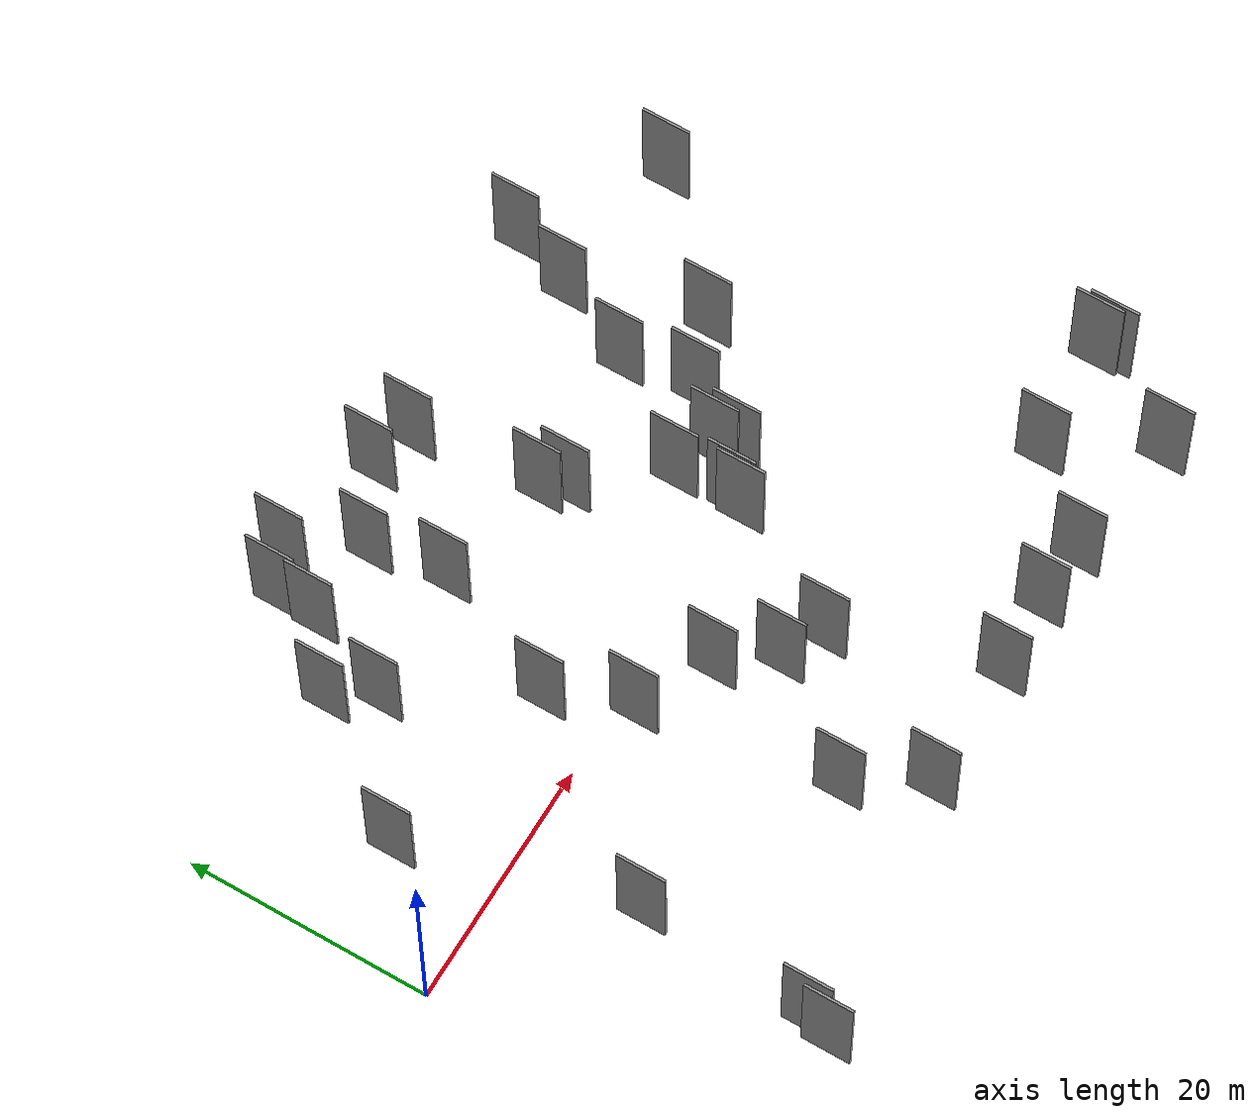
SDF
<sdf version="1.6">
 <world name="default">
  <scene>
   <sky><clouds><speed>12</speed></clouds></sky>
   <ambient>0.4 0.4 0.4 1</ambient>
   <background>0.7 0.7 0.7 1</background>
   <shadows>1</shadows>
  </scene>
  <gravity>0 0 -9.8066</gravity>
  <magnetic_field>6e-06 2.3e-05 -4.2e-05</magnetic_field>
  <physics default="0" name="default_physics" type="ode">
   <ode>
    <solver>
     <type>quick</type>
     <iters>10</iters>
     <sor>1.0</sor>
     <use_dynamic_moi_rescaling>0</use_dynamic_moi_rescaling>
    </solver>
    <constraints>
     <cfm>0</cfm>
     <erp>0.2</erp>
     <contact_max_correcting_vel>100</contact_max_correcting_vel>
     <contact_surface_layer>0.001</contact_surface_layer>
    </constraints>
   </ode>
   <max_step_size>0.004</max_step_size>
   <real_time_factor>1</real_time_factor>
   <real_time_update_rate>250</real_time_update_rate>
  </physics>
  <light name="sun" type="directional">
   <pose>0 0 10 0 0 0</pose>
   <diffuse>0.8 0.8 0.8 1</diffuse>
   <specular>0.2 0.2 0.2 1</specular>
   <attenuation>
    <range>1000</range>
    <constant>0.9</constant>
    <linear>0.01</linear>
    <quadratic>0.001</quadratic>
   </attenuation>
   <direction>-0.5 0.1 -0.9</direction>
  </light>
  <model name="grey_wall_1">
   <static>1</static>
   <pose>67.3422 -16.6134 2.5 0.000000 0.000000 1.570796</pose>
   <link name="link">
    <pose>0 0 5.00 0 0 0</pose>
    <collision name="collision"><geometry><box><size>4.00 0.2 10.00</size></box></geometry></collision>
    <visual name="visual">
     <cast_shadows>0</cast_shadows>
     <geometry><box><size>4.00 0.2 10.00</size></box></geometry>
     <material>
      <script>
       <uri>model://grey_wall/materials/scripts</uri>
       <uri>model://grey_wall/materials/textures</uri>
       <name>vrc/grey_wall</name>
      </script>
     </material>
    </visual>
   </link>
  </model>
  <model name="grey_wall_2">
   <static>1</static>
   <pose>37.7142 11.1128 2.5 0.000000 0.000000 1.570796</pose>
   <link name="link">
    <pose>0 0 5.00 0 0 0</pose>
    <collision name="collision"><geometry><box><size>4.00 0.2 10.00</size></box></geometry></collision>
    <visual name="visual">
     <cast_shadows>0</cast_shadows>
     <geometry><box><size>4.00 0.2 10.00</size></box></geometry>
     <material>
      <script>
       <uri>model://grey_wall/materials/scripts</uri>
       <uri>model://grey_wall/materials/textures</uri>
       <name>vrc/grey_wall</name>
      </script>
     </material>
    </visual>
   </link>
  </model>
  <model name="grey_wall_3">
   <static>1</static>
   <pose>54.7475 9.1924 2.5 0.000000 0.000000 1.570796</pose>
   <link name="link">
    <pose>0 0 5.00 0 0 0</pose>
    <collision name="collision"><geometry><box><size>4.00 0.2 10.00</size></box></geometry></collision>
    <visual name="visual">
     <cast_shadows>0</cast_shadows>
     <geometry><box><size>4.00 0.2 10.00</size></box></geometry>
     <material>
      <script>
       <uri>model://grey_wall/materials/scripts</uri>
       <uri>model://grey_wall/materials/textures</uri>
       <name>vrc/grey_wall</name>
      </script>
     </material>
    </visual>
   </link>
  </model>
  <model name="grey_wall_4">
   <static>1</static>
   <pose>22.6346 25.9920 2.5 0.000000 0.000000 1.570796</pose>
   <link name="link">
    <pose>0 0 5.00 0 0 0</pose>
    <collision name="collision"><geometry><box><size>4.00 0.2 10.00</size></box></geometry></collision>
    <visual name="visual">
     <cast_shadows>0</cast_shadows>
     <geometry><box><size>4.00 0.2 10.00</size></box></geometry>
     <material>
      <script>
       <uri>model://grey_wall/materials/scripts</uri>
       <uri>model://grey_wall/materials/textures</uri>
       <name>vrc/grey_wall</name>
      </script>
     </material>
    </visual>
   </link>
  </model>
  <model name="grey_wall_5">
   <static>1</static>
   <pose>27.3170 -17.8542 2.5 0.000000 0.000000 1.570796</pose>
   <link name="link">
    <pose>0 0 5.00 0 0 0</pose>
    <collision name="collision"><geometry><box><size>4.00 0.2 10.00</size></box></geometry></collision>
    <visual name="visual">
     <cast_shadows>0</cast_shadows>
     <geometry><box><size>4.00 0.2 10.00</size></box></geometry>
     <material>
      <script>
       <uri>model://grey_wall/materials/scripts</uri>
       <uri>model://grey_wall/materials/textures</uri>
       <name>vrc/grey_wall</name>
      </script>
     </material>
    </visual>
   </link>
  </model>
  <model name="grey_wall_6">
   <static>1</static>
   <pose>42.7058 -0.6624 2.5 0.000000 0.000000 1.570796</pose>
   <link name="link">
    <pose>0 0 5.00 0 0 0</pose>
    <collision name="collision"><geometry><box><size>4.00 0.2 10.00</size></box></geometry></collision>
    <visual name="visual">
     <cast_shadows>0</cast_shadows>
     <geometry><box><size>4.00 0.2 10.00</size></box></geometry>
     <material>
      <script>
       <uri>model://grey_wall/materials/scripts</uri>
       <uri>model://grey_wall/materials/textures</uri>
       <name>vrc/grey_wall</name>
      </script>
     </material>
    </visual>
   </link>
  </model>
  <model name="grey_wall_7">
   <static>1</static>
   <pose>19.4963 24.7932 2.5 0.000000 0.000000 1.570796</pose>
   <link name="link">
    <pose>0 0 5.00 0 0 0</pose>
    <collision name="collision"><geometry><box><size>4.00 0.2 10.00</size></box></geometry></collision>
    <visual name="visual">
     <cast_shadows>0</cast_shadows>
     <geometry><box><size>4.00 0.2 10.00</size></box></geometry>
     <material>
      <script>
       <uri>model://grey_wall/materials/scripts</uri>
       <uri>model://grey_wall/materials/textures</uri>
       <name>vrc/grey_wall</name>
      </script>
     </material>
    </visual>
   </link>
  </model>
  <model name="grey_wall_8">
   <static>1</static>
   <pose>35.5507 23.1184 2.5 0.000000 0.000000 1.570796</pose>
   <link name="link">
    <pose>0 0 5.00 0 0 0</pose>
    <collision name="collision"><geometry><box><size>4.00 0.2 10.00</size></box></geometry></collision>
    <visual name="visual">
     <cast_shadows>0</cast_shadows>
     <geometry><box><size>4.00 0.2 10.00</size></box></geometry>
     <material>
      <script>
       <uri>model://grey_wall/materials/scripts</uri>
       <uri>model://grey_wall/materials/textures</uri>
       <name>vrc/grey_wall</name>
      </script>
     </material>
    </visual>
   </link>
  </model>
  <model name="grey_wall_9">
   <static>1</static>
   <pose>11.8561 -10.7022 2.5 0.000000 0.000000 1.570796</pose>
   <link name="link">
    <pose>0 0 5.00 0 0 0</pose>
    <collision name="collision"><geometry><box><size>4.00 0.2 10.00</size></box></geometry></collision>
    <visual name="visual">
     <cast_shadows>0</cast_shadows>
     <geometry><box><size>4.00 0.2 10.00</size></box></geometry>
     <material>
      <script>
       <uri>model://grey_wall/materials/scripts</uri>
       <uri>model://grey_wall/materials/textures</uri>
       <name>vrc/grey_wall</name>
      </script>
     </material>
    </visual>
   </link>
  </model>
  <model name="grey_wall_10">
   <static>1</static>
   <pose>30.8755 -5.2989 2.5 0.000000 0.000000 1.570796</pose>
   <link name="link">
    <pose>0 0 5.00 0 0 0</pose>
    <collision name="collision"><geometry><box><size>4.00 0.2 10.00</size></box></geometry></collision>
    <visual name="visual">
     <cast_shadows>0</cast_shadows>
     <geometry><box><size>4.00 0.2 10.00</size></box></geometry>
     <material>
      <script>
       <uri>model://grey_wall/materials/scripts</uri>
       <uri>model://grey_wall/materials/textures</uri>
       <name>vrc/grey_wall</name>
      </script>
     </material>
    </visual>
   </link>
  </model>
  <model name="grey_wall_11">
   <static>1</static>
   <pose>67.7193 -17.6005 2.5 0.000000 0.000000 1.570796</pose>
   <link name="link">
    <pose>0 0 5.00 0 0 0</pose>
    <collision name="collision"><geometry><box><size>4.00 0.2 10.00</size></box></geometry></collision>
    <visual name="visual">
     <cast_shadows>0</cast_shadows>
     <geometry><box><size>4.00 0.2 10.00</size></box></geometry>
     <material>
      <script>
       <uri>model://grey_wall/materials/scripts</uri>
       <uri>model://grey_wall/materials/textures</uri>
       <name>vrc/grey_wall</name>
      </script>
     </material>
    </visual>
   </link>
  </model>
  <model name="grey_wall_12">
   <static>1</static>
   <pose>53.6920 25.0556 2.5 0.000000 0.000000 1.570796</pose>
   <link name="link">
    <pose>0 0 5.00 0 0 0</pose>
    <collision name="collision"><geometry><box><size>4.00 0.2 10.00</size></box></geometry></collision>
    <visual name="visual">
     <cast_shadows>0</cast_shadows>
     <geometry><box><size>4.00 0.2 10.00</size></box></geometry>
     <material>
      <script>
       <uri>model://grey_wall/materials/scripts</uri>
       <uri>model://grey_wall/materials/textures</uri>
       <name>vrc/grey_wall</name>
      </script>
     </material>
    </visual>
   </link>
  </model>
  <model name="grey_wall_13">
   <static>1</static>
   <pose>41.1027 -23.5649 2.5 0.000000 0.000000 1.570796</pose>
   <link name="link">
    <pose>0 0 5.00 0 0 0</pose>
    <collision name="collision"><geometry><box><size>4.00 0.2 10.00</size></box></geometry></collision>
    <visual name="visual">
     <cast_shadows>0</cast_shadows>
     <geometry><box><size>4.00 0.2 10.00</size></box></geometry>
     <material>
      <script>
       <uri>model://grey_wall/materials/scripts</uri>
       <uri>model://grey_wall/materials/textures</uri>
       <name>vrc/grey_wall</name>
      </script>
     </material>
    </visual>
   </link>
  </model>
  <model name="grey_wall_14">
   <static>1</static>
   <pose>7.1242 7.2730 2.5 0.000000 0.000000 1.570796</pose>
   <link name="link">
    <pose>0 0 5.00 0 0 0</pose>
    <collision name="collision"><geometry><box><size>4.00 0.2 10.00</size></box></geometry></collision>
    <visual name="visual">
     <cast_shadows>0</cast_shadows>
     <geometry><box><size>4.00 0.2 10.00</size></box></geometry>
     <material>
      <script>
       <uri>model://grey_wall/materials/scripts</uri>
       <uri>model://grey_wall/materials/textures</uri>
       <name>vrc/grey_wall</name>
      </script>
     </material>
    </visual>
   </link>
  </model>
  <model name="grey_wall_15">
   <static>1</static>
   <pose>16.4103 14.1137 2.5 0.000000 0.000000 1.570796</pose>
   <link name="link">
    <pose>0 0 5.00 0 0 0</pose>
    <collision name="collision"><geometry><box><size>4.00 0.2 10.00</size></box></geometry></collision>
    <visual name="visual">
     <cast_shadows>0</cast_shadows>
     <geometry><box><size>4.00 0.2 10.00</size></box></geometry>
     <material>
      <script>
       <uri>model://grey_wall/materials/scripts</uri>
       <uri>model://grey_wall/materials/textures</uri>
       <name>vrc/grey_wall</name>
      </script>
     </material>
    </visual>
   </link>
  </model>
  <model name="grey_wall_16">
   <static>1</static>
   <pose>24.9973 -2.2562 2.5 0.000000 0.000000 1.570796</pose>
   <link name="link">
    <pose>0 0 5.00 0 0 0</pose>
    <collision name="collision"><geometry><box><size>4.00 0.2 10.00</size></box></geometry></collision>
    <visual name="visual">
     <cast_shadows>0</cast_shadows>
     <geometry><box><size>4.00 0.2 10.00</size></box></geometry>
     <material>
      <script>
       <uri>model://grey_wall/materials/scripts</uri>
       <uri>model://grey_wall/materials/textures</uri>
       <name>vrc/grey_wall</name>
      </script>
     </material>
    </visual>
   </link>
  </model>
  <model name="grey_wall_17">
   <static>1</static>
   <pose>33.7942 -9.2755 2.5 0.000000 0.000000 1.570796</pose>
   <link name="link">
    <pose>0 0 5.00 0 0 0</pose>
    <collision name="collision"><geometry><box><size>4.00 0.2 10.00</size></box></geometry></collision>
    <visual name="visual">
     <cast_shadows>0</cast_shadows>
     <geometry><box><size>4.00 0.2 10.00</size></box></geometry>
     <material>
      <script>
       <uri>model://grey_wall/materials/scripts</uri>
       <uri>model://grey_wall/materials/textures</uri>
       <name>vrc/grey_wall</name>
      </script>
     </material>
    </visual>
   </link>
  </model>
  <model name="grey_wall_18">
   <static>1</static>
   <pose>49.4468 7.1205 2.5 0.000000 0.000000 1.570796</pose>
   <link name="link">
    <pose>0 0 5.00 0 0 0</pose>
    <collision name="collision"><geometry><box><size>4.00 0.2 10.00</size></box></geometry></collision>
    <visual name="visual">
     <cast_shadows>0</cast_shadows>
     <geometry><box><size>4.00 0.2 10.00</size></box></geometry>
     <material>
      <script>
       <uri>model://grey_wall/materials/scripts</uri>
       <uri>model://grey_wall/materials/textures</uri>
       <name>vrc/grey_wall</name>
      </script>
     </material>
    </visual>
   </link>
  </model>
  <model name="grey_wall_19">
   <static>1</static>
   <pose>10.8008 -24.8072 2.5 0.000000 0.000000 1.570796</pose>
   <link name="link">
    <pose>0 0 5.00 0 0 0</pose>
    <collision name="collision"><geometry><box><size>4.00 0.2 10.00</size></box></geometry></collision>
    <visual name="visual">
     <cast_shadows>0</cast_shadows>
     <geometry><box><size>4.00 0.2 10.00</size></box></geometry>
     <material>
      <script>
       <uri>model://grey_wall/materials/scripts</uri>
       <uri>model://grey_wall/materials/textures</uri>
       <name>vrc/grey_wall</name>
      </script>
     </material>
    </visual>
   </link>
  </model>
  <model name="grey_wall_20">
   <static>1</static>
   <pose>31.9187 24.2031 2.5 0.000000 0.000000 1.570796</pose>
   <link name="link">
    <pose>0 0 5.00 0 0 0</pose>
    <collision name="collision"><geometry><box><size>4.00 0.2 10.00</size></box></geometry></collision>
    <visual name="visual">
     <cast_shadows>0</cast_shadows>
     <geometry><box><size>4.00 0.2 10.00</size></box></geometry>
     <material>
      <script>
       <uri>model://grey_wall/materials/scripts</uri>
       <uri>model://grey_wall/materials/textures</uri>
       <name>vrc/grey_wall</name>
      </script>
     </material>
    </visual>
   </link>
  </model>
  <model name="grey_wall_21">
   <static>1</static>
   <pose>10.1541 -26.7928 2.5 0.000000 0.000000 1.570796</pose>
   <link name="link">
    <pose>0 0 5.00 0 0 0</pose>
    <collision name="collision"><geometry><box><size>4.00 0.2 10.00</size></box></geometry></collision>
    <visual name="visual">
     <cast_shadows>0</cast_shadows>
     <geometry><box><size>4.00 0.2 10.00</size></box></geometry>
     <material>
      <script>
       <uri>model://grey_wall/materials/scripts</uri>
       <uri>model://grey_wall/materials/textures</uri>
       <name>vrc/grey_wall</name>
      </script>
     </material>
    </visual>
   </link>
  </model>
  <model name="grey_wall_22">
   <static>1</static>
   <pose>48.6685 13.1339 2.5 0.000000 0.000000 1.570796</pose>
   <link name="link">
    <pose>0 0 5.00 0 0 0</pose>
    <collision name="collision"><geometry><box><size>4.00 0.2 10.00</size></box></geometry></collision>
    <visual name="visual">
     <cast_shadows>0</cast_shadows>
     <geometry><box><size>4.00 0.2 10.00</size></box></geometry>
     <material>
      <script>
       <uri>model://grey_wall/materials/scripts</uri>
       <uri>model://grey_wall/materials/textures</uri>
       <name>vrc/grey_wall</name>
      </script>
     </material>
    </visual>
   </link>
  </model>
  <model name="grey_wall_23">
   <static>1</static>
   <pose>19.2540 21.3739 2.5 0.000000 0.000000 1.570796</pose>
   <link name="link">
    <pose>0 0 5.00 0 0 0</pose>
    <collision name="collision"><geometry><box><size>4.00 0.2 10.00</size></box></geometry></collision>
    <visual name="visual">
     <cast_shadows>0</cast_shadows>
     <geometry><box><size>4.00 0.2 10.00</size></box></geometry>
     <material>
      <script>
       <uri>model://grey_wall/materials/scripts</uri>
       <uri>model://grey_wall/materials/textures</uri>
       <name>vrc/grey_wall</name>
      </script>
     </material>
    </visual>
   </link>
  </model>
  <model name="grey_wall_24">
   <static>1</static>
   <pose>42.7787 4.9533 2.5 0.000000 0.000000 1.570796</pose>
   <link name="link">
    <pose>0 0 5.00 0 0 0</pose>
    <collision name="collision"><geometry><box><size>4.00 0.2 10.00</size></box></geometry></collision>
    <visual name="visual">
     <cast_shadows>0</cast_shadows>
     <geometry><box><size>4.00 0.2 10.00</size></box></geometry>
     <material>
      <script>
       <uri>model://grey_wall/materials/scripts</uri>
       <uri>model://grey_wall/materials/textures</uri>
       <name>vrc/grey_wall</name>
      </script>
     </material>
    </visual>
   </link>
  </model>
  <model name="grey_wall_25">
   <static>1</static>
   <pose>30.7555 -23.6122 2.5 0.000000 0.000000 1.570796</pose>
   <link name="link">
    <pose>0 0 5.00 0 0 0</pose>
    <collision name="collision"><geometry><box><size>4.00 0.2 10.00</size></box></geometry></collision>
    <visual name="visual">
     <cast_shadows>0</cast_shadows>
     <geometry><box><size>4.00 0.2 10.00</size></box></geometry>
     <material>
      <script>
       <uri>model://grey_wall/materials/scripts</uri>
       <uri>model://grey_wall/materials/textures</uri>
       <name>vrc/grey_wall</name>
      </script>
     </material>
    </visual>
   </link>
  </model>
  <model name="grey_wall_26">
   <static>1</static>
   <pose>51.7368 19.8329 2.5 0.000000 0.000000 1.570796</pose>
   <link name="link">
    <pose>0 0 5.00 0 0 0</pose>
    <collision name="collision"><geometry><box><size>4.00 0.2 10.00</size></box></geometry></collision>
    <visual name="visual">
     <cast_shadows>0</cast_shadows>
     <geometry><box><size>4.00 0.2 10.00</size></box></geometry>
     <material>
      <script>
       <uri>model://grey_wall/materials/scripts</uri>
       <uri>model://grey_wall/materials/textures</uri>
       <name>vrc/grey_wall</name>
      </script>
     </material>
    </visual>
   </link>
  </model>
  <model name="grey_wall_27">
   <static>1</static>
   <pose>26.0303 20.9294 2.5 0.000000 0.000000 1.570796</pose>
   <link name="link">
    <pose>0 0 5.00 0 0 0</pose>
    <collision name="collision"><geometry><box><size>4.00 0.2 10.00</size></box></geometry></collision>
    <visual name="visual">
     <cast_shadows>0</cast_shadows>
     <geometry><box><size>4.00 0.2 10.00</size></box></geometry>
     <material>
      <script>
       <uri>model://grey_wall/materials/scripts</uri>
       <uri>model://grey_wall/materials/textures</uri>
       <name>vrc/grey_wall</name>
      </script>
     </material>
    </visual>
   </link>
  </model>
  <model name="grey_wall_28">
   <static>1</static>
   <pose>58.0857 -17.2474 2.5 0.000000 0.000000 1.570796</pose>
   <link name="link">
    <pose>0 0 5.00 0 0 0</pose>
    <collision name="collision"><geometry><box><size>4.00 0.2 10.00</size></box></geometry></collision>
    <visual name="visual">
     <cast_shadows>0</cast_shadows>
     <geometry><box><size>4.00 0.2 10.00</size></box></geometry>
     <material>
      <script>
       <uri>model://grey_wall/materials/scripts</uri>
       <uri>model://grey_wall/materials/textures</uri>
       <name>vrc/grey_wall</name>
      </script>
     </material>
    </visual>
   </link>
  </model>
  <model name="grey_wall_29">
   <static>1</static>
   <pose>47.2939 -23.2404 2.5 0.000000 0.000000 1.570796</pose>
   <link name="link">
    <pose>0 0 5.00 0 0 0</pose>
    <collision name="collision"><geometry><box><size>4.00 0.2 10.00</size></box></geometry></collision>
    <visual name="visual">
     <cast_shadows>0</cast_shadows>
     <geometry><box><size>4.00 0.2 10.00</size></box></geometry>
     <material>
      <script>
       <uri>model://grey_wall/materials/scripts</uri>
       <uri>model://grey_wall/materials/textures</uri>
       <name>vrc/grey_wall</name>
      </script>
     </material>
    </visual>
   </link>
  </model>
  <model name="grey_wall_30">
   <static>1</static>
   <pose>46.0446 3.4954 2.5 0.000000 0.000000 1.570796</pose>
   <link name="link">
    <pose>0 0 5.00 0 0 0</pose>
    <collision name="collision"><geometry><box><size>4.00 0.2 10.00</size></box></geometry></collision>
    <visual name="visual">
     <cast_shadows>0</cast_shadows>
     <geometry><box><size>4.00 0.2 10.00</size></box></geometry>
     <material>
      <script>
       <uri>model://grey_wall/materials/scripts</uri>
       <uri>model://grey_wall/materials/textures</uri>
       <name>vrc/grey_wall</name>
      </script>
     </material>
    </visual>
   </link>
  </model>
  <model name="grey_wall_31">
   <static>1</static>
   <pose>64.0466 18.2950 2.5 0.000000 0.000000 1.570796</pose>
   <link name="link">
    <pose>0 0 5.00 0 0 0</pose>
    <collision name="collision"><geometry><box><size>4.00 0.2 10.00</size></box></geometry></collision>
    <visual name="visual">
     <cast_shadows>0</cast_shadows>
     <geometry><box><size>4.00 0.2 10.00</size></box></geometry>
     <material>
      <script>
       <uri>model://grey_wall/materials/scripts</uri>
       <uri>model://grey_wall/materials/textures</uri>
       <name>vrc/grey_wall</name>
      </script>
     </material>
    </visual>
   </link>
  </model>
  <model name="grey_wall_32">
   <static>1</static>
   <pose>26.9515 14.8065 2.5 0.000000 0.000000 1.570796</pose>
   <link name="link">
    <pose>0 0 5.00 0 0 0</pose>
    <collision name="collision"><geometry><box><size>4.00 0.2 10.00</size></box></geometry></collision>
    <visual name="visual">
     <cast_shadows>0</cast_shadows>
     <geometry><box><size>4.00 0.2 10.00</size></box></geometry>
     <material>
      <script>
       <uri>model://grey_wall/materials/scripts</uri>
       <uri>model://grey_wall/materials/textures</uri>
       <name>vrc/grey_wall</name>
      </script>
     </material>
    </visual>
   </link>
  </model>
  <model name="grey_wall_33">
   <static>1</static>
   <pose>52.1921 -23.5027 2.5 0.000000 0.000000 1.570796</pose>
   <link name="link">
    <pose>0 0 5.00 0 0 0</pose>
    <collision name="collision"><geometry><box><size>4.00 0.2 10.00</size></box></geometry></collision>
    <visual name="visual">
     <cast_shadows>0</cast_shadows>
     <geometry><box><size>4.00 0.2 10.00</size></box></geometry>
     <material>
      <script>
       <uri>model://grey_wall/materials/scripts</uri>
       <uri>model://grey_wall/materials/textures</uri>
       <name>vrc/grey_wall</name>
      </script>
     </material>
    </visual>
   </link>
  </model>
  <model name="grey_wall_34">
   <static>1</static>
   <pose>37.0742 -10.9308 2.5 0.000000 0.000000 1.570796</pose>
   <link name="link">
    <pose>0 0 5.00 0 0 0</pose>
    <collision name="collision"><geometry><box><size>4.00 0.2 10.00</size></box></geometry></collision>
    <visual name="visual">
     <cast_shadows>0</cast_shadows>
     <geometry><box><size>4.00 0.2 10.00</size></box></geometry>
     <material>
      <script>
       <uri>model://grey_wall/materials/scripts</uri>
       <uri>model://grey_wall/materials/textures</uri>
       <name>vrc/grey_wall</name>
      </script>
     </material>
    </visual>
   </link>
  </model>
  <model name="grey_wall_35">
   <static>1</static>
   <pose>43.0442 0.3076 2.5 0.000000 0.000000 1.570796</pose>
   <link name="link">
    <pose>0 0 5.00 0 0 0</pose>
    <collision name="collision"><geometry><box><size>4.00 0.2 10.00</size></box></geometry></collision>
    <visual name="visual">
     <cast_shadows>0</cast_shadows>
     <geometry><box><size>4.00 0.2 10.00</size></box></geometry>
     <material>
      <script>
       <uri>model://grey_wall/materials/scripts</uri>
       <uri>model://grey_wall/materials/textures</uri>
       <name>vrc/grey_wall</name>
      </script>
     </material>
    </visual>
   </link>
  </model>
  <model name="grey_wall_36">
   <static>1</static>
   <pose>14.3245 17.3363 2.5 0.000000 0.000000 1.570796</pose>
   <link name="link">
    <pose>0 0 5.00 0 0 0</pose>
    <collision name="collision"><geometry><box><size>4.00 0.2 10.00</size></box></geometry></collision>
    <visual name="visual">
     <cast_shadows>0</cast_shadows>
     <geometry><box><size>4.00 0.2 10.00</size></box></geometry>
     <material>
      <script>
       <uri>model://grey_wall/materials/scripts</uri>
       <uri>model://grey_wall/materials/textures</uri>
       <name>vrc/grey_wall</name>
      </script>
     </material>
    </visual>
   </link>
  </model>
  <model name="grey_wall_37">
   <static>1</static>
   <pose>46.7115 2.0470 2.5 0.000000 0.000000 1.570796</pose>
   <link name="link">
    <pose>0 0 5.00 0 0 0</pose>
    <collision name="collision"><geometry><box><size>4.00 0.2 10.00</size></box></geometry></collision>
    <visual name="visual">
     <cast_shadows>0</cast_shadows>
     <geometry><box><size>4.00 0.2 10.00</size></box></geometry>
     <material>
      <script>
       <uri>model://grey_wall/materials/scripts</uri>
       <uri>model://grey_wall/materials/textures</uri>
       <name>vrc/grey_wall</name>
      </script>
     </material>
    </visual>
   </link>
  </model>
  <model name="grey_wall_38">
   <static>1</static>
   <pose>62.6575 -24.9414 2.5 0.000000 0.000000 1.570796</pose>
   <link name="link">
    <pose>0 0 5.00 0 0 0</pose>
    <collision name="collision"><geometry><box><size>4.00 0.2 10.00</size></box></geometry></collision>
    <visual name="visual">
     <cast_shadows>0</cast_shadows>
     <geometry><box><size>4.00 0.2 10.00</size></box></geometry>
     <material>
      <script>
       <uri>model://grey_wall/materials/scripts</uri>
       <uri>model://grey_wall/materials/textures</uri>
       <name>vrc/grey_wall</name>
      </script>
     </material>
    </visual>
   </link>
  </model>
  <model name="grey_wall_39">
   <static>1</static>
   <pose>22.4967 4.0572 2.5 0.000000 0.000000 1.570796</pose>
   <link name="link">
    <pose>0 0 5.00 0 0 0</pose>
    <collision name="collision"><geometry><box><size>4.00 0.2 10.00</size></box></geometry></collision>
    <visual name="visual">
     <cast_shadows>0</cast_shadows>
     <geometry><box><size>4.00 0.2 10.00</size></box></geometry>
     <material>
      <script>
       <uri>model://grey_wall/materials/scripts</uri>
       <uri>model://grey_wall/materials/textures</uri>
       <name>vrc/grey_wall</name>
      </script>
     </material>
    </visual>
   </link>
  </model>
  <model name="grey_wall_40">
   <static>1</static>
   <pose>36.5913 12.8201 2.5 0.000000 0.000000 1.570796</pose>
   <link name="link">
    <pose>0 0 5.00 0 0 0</pose>
    <collision name="collision"><geometry><box><size>4.00 0.2 10.00</size></box></geometry></collision>
    <visual name="visual">
     <cast_shadows>0</cast_shadows>
     <geometry><box><size>4.00 0.2 10.00</size></box></geometry>
     <material>
      <script>
       <uri>model://grey_wall/materials/scripts</uri>
       <uri>model://grey_wall/materials/textures</uri>
       <name>vrc/grey_wall</name>
      </script>
     </material>
    </visual>
   </link>
  </model>
 </world>
</sdf>
